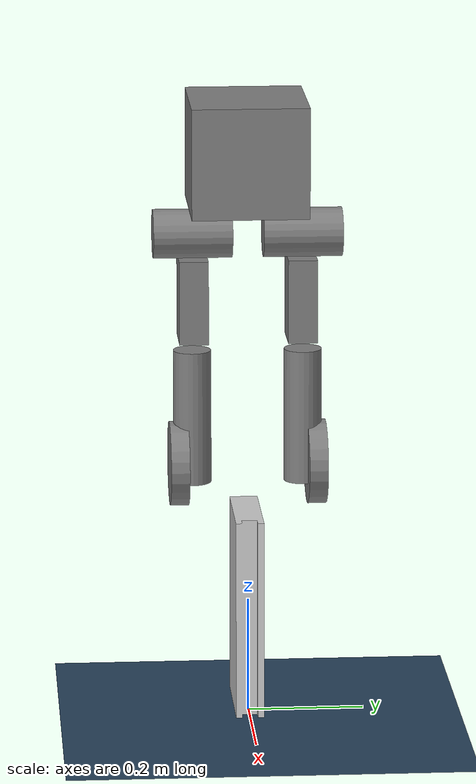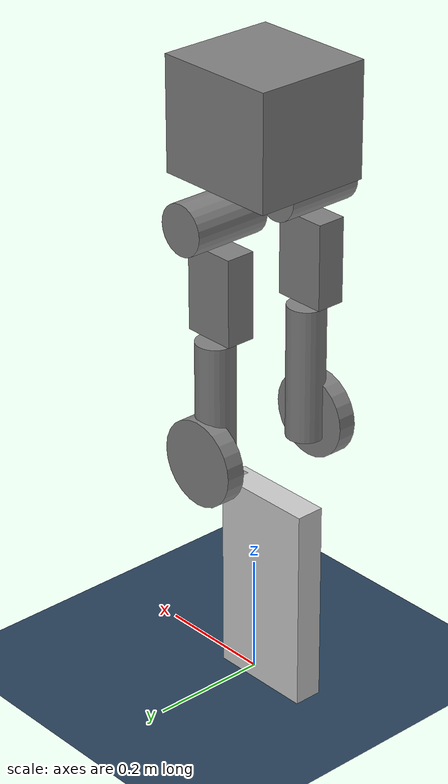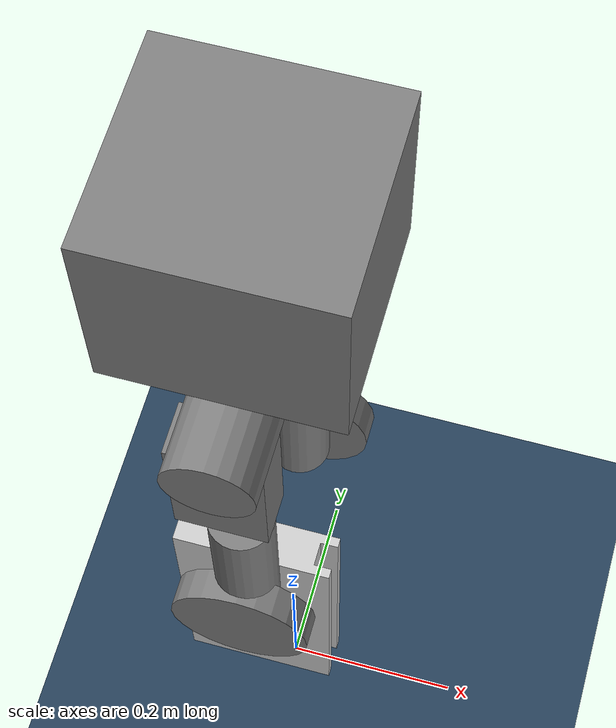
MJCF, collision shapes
<mujoco model="GOAT_on_Stand">
    <compiler angle="radian" coordinate="local" meshdir="../meshes/"/>
    <option timestep="0.005" gravity="0 0 -9.81"/>

    <!-- GOAT robot -->
    <include file="./goat_floating.xml"/>

    <!-- Stand jig -->
    <asset>
        <mesh name="jig_mesh" file="GOAT_stand7mm35cm.stl" scale="0.9 1 1"/>
        <material name="jig_material" rgba="0.8 0.8 0.8 1.0"/>
    </asset>

    <worldbody>
        <light pos="0 0 1.5" dir="0 0 -1" directional="true"/>

        <body name="jig_link" pos="-0.04 0 0">
            <inertial pos="0 0 0" mass="10.0" fullinertia="0.05 0.05 0.05 0.0 0.0 0.0"/>
            <geom name="jig_geom" type="mesh" mesh="jig_mesh" material="jig_material"
                  pos="0 0 0" euler="0 0 -1.570796"
                  contype="1" conaffinity="1"/>
        </body>
    </worldbody>
</mujoco>

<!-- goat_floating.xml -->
<mujoco model="GOAT_Floating">
    <compiler angle="radian" coordinate="local" meshdir="../meshes/" autolimits="true"/>

    <option timestep="0.005" gravity="0 0 -9.81" integrator="implicit" solver="Newton" iterations="32"/>

    <asset>
        <texture  name="groundplane" type="2d" builtin="checker" mark="edge" rgb1="0.2 0.3 0.4" rgb2="0.1 0.2 0.3" markrgb="0.8 0.8 0.8" width="512" height="512"/>
        <material name="groundplane" texture="groundplane" texuniform="true" texrepeat="5 5" reflectance="0.2"/>
    </asset>

    <worldbody>
        <light directional="true" diffuse=".8 .8 .8" specular=".2 .2 .2" pos="0 0 5" dir="0 0 -1"/>
        <geom name="floor" type="plane" size="0 0 1" material="groundplane"/>
    </worldbody>

    <asset>
        <mesh name="base_Link" file="base_Link_simple.stl"/>
        <mesh name="hip_L_Link" file="hip_L_Link.stl"/>
        <mesh name="hip_R_Link" file="hip_R_Link.stl"/>
        <mesh name="thigh_L_Link" file="thigh_L_Link.stl"/>
        <mesh name="thigh_R_Link" file="thigh_R_Link.stl"/>
        <mesh name="calf_L_Link" file="calf_L_Link.stl"/>
        <mesh name="calf_R_Link" file="calf_R_Link.stl"/>
        <mesh name="wheel_L_Link" file="wheel_L_Link.stl"/>
        <mesh name="wheel_R_Link" file="wheel_R_Link.stl"/>

        <material name="orange" rgba="1.0 0.423 0.039 1.0"/>
        <material name="black" rgba="0.792 0.819 0.933 1.0"/>
        <material name="white" rgba="1.0 1.0 1.0 1.0"/>
    </asset>

    <default>
        <geom contype="1" conaffinity="1" friction="0.6 0.1 0.1"/>
        <motor ctrllimited="true"/>
    </default>

    <worldbody>
        <body name="base_Link" pos="0 0 1.0">
            <!-- Floating base. Removing this drops nq 15 -> 8 and the 'home'
                 keyframe below stops matching; shrink its qpos too if you do. -->
            <freejoint name="root"/>
            <site name="imu_site" pos="0 0 0" size="0.01" type="sphere" rgba="1 0 0 1"/>

            <inertial pos="-0.009521 0.000016 -0.072346" mass="3.119" fullinertia="0.020284450 0.023476973 0.021206204 -0.000005647 0.006404633 0.000000541"/>
            <geom type="mesh" mesh="base_Link" material="black" pos="-0.1235 0 0.0155" contype="0" conaffinity="0" group="1"/>
            <geom type="box" size="0.107 0.100 0.095" pos="-0.02 0 -0.015" group="3"/>

            <body name="hip_L_Link" pos="0.038386 0.094233 -0.152597">
                <joint name="hip_L_Joint" type="hinge" axis="-1 0 0" range="-1.7453 1.0123" damping="0.06 0.0 0.0" frictionloss="0.05" armature="0.00202"/>
                <inertial pos="-0.048092 -0.038296 -0.000162" mass="0.316" fullinertia="0.000143701 0.000215732 0.000197705 -0.000012808 -0.000001530 -0.000000447"/>
                <geom type="mesh" mesh="hip_L_Link" material="black" contype="0" conaffinity="0" group="1"/>
                <geom type="cylinder" size="0.042 0.0675" pos="-0.0535 0 0" euler="1.57 0 0" group="3"/>

                <body name="thigh_L_Link" pos="-0.054 -0.017 0">
                    <joint name="thigh_L_Joint" type="hinge" axis="0 1 0" range="-0.3840 2.0071" damping="0.04 0.0 0.0" frictionloss="0.04" armature="0.00202"/>
                    <inertial pos="-0.002015 0.042352 -0.035272" mass="0.496" fullinertia="0.003893000 0.002945000 0.001254000 0.000020446085 -0.000110100 0.000343500"/>
                    <geom type="mesh" mesh="thigh_L_Link" material="white" contype="0" conaffinity="0" group="1"/>
                    <geom type="box" size="0.045 0.025 0.0725" pos="-0.011 0.016 -0.116" group="3"/>

                    <body name="calf_L_Link" pos="0 0.018 -0.205">
                        <joint name="knee_L_Joint" type="hinge" axis="0 -1 0" range="-0.523599 2.3387" damping="0.08 0.0 0.0" frictionloss="0.2" armature="0.00808"/>
                        <inertial pos="0.001969 0.000712 -0.160161" mass="0.326" fullinertia="0.009381000 0.009422000 0.000096695739 0.000000280420 0.000064503362 0.000041025966"/>
                        <geom type="mesh" mesh="calf_L_Link" material="black" contype="0" conaffinity="0" group="1"/>
                        <geom type="cylinder" size="0.0325 0.1165" pos="0 0 -0.116" group="3"/>

                        <body name="wheel_L_Link" pos="0 0.016555 -0.200">
                            <joint name="wheel_L_Joint" type="hinge" axis="0 1 0" damping="0.002 0.0 0.0" frictionloss="0.02" armature="0.0014"/>
                            <inertial pos="0.000000 0.007264 -0.000002" mass="0.239" fullinertia="0.000338788 0.000647488 0.000338791 -0.000000001 -0.000000008 0.000000001"/>
                            <geom type="mesh" mesh="wheel_L_Link" material="orange" contype="0" conaffinity="0" group="1"/>
                            <geom name="wheel_L_collision" type="cylinder" size="0.07275 0.016" pos="0 0.007 0" euler="1.5707 0 0" group="3"/>
                        </body>
                    </body>
                </body>
            </body>

            <body name="hip_R_Link" pos="0.038386 -0.094233 -0.152597">
                <joint name="hip_R_Joint" type="hinge" axis="-1 0 0" range="-1.0123 1.7453" damping="0.06 0.0 0.0" frictionloss="0.05" armature="0.00202"/>
                <inertial pos="-0.048092 0.038296 -0.000162" mass="0.322" fullinertia="0.000143701 0.000215732 0.000197705 0.000012808 -0.000001530 0.000000447"/>
                <geom type="mesh" mesh="hip_R_Link" material="black" contype="0" conaffinity="0" group="1"/>
                <geom type="cylinder" size="0.042 0.0675" pos="-0.0535 0 0" euler="1.57 0 0" group="3"/>

                <body name="thigh_R_Link" pos="-0.054 0.017 0">
                    <joint name="thigh_R_Joint" type="hinge" axis="0 -1 0" range="-2.0071 0.3840" damping="0.04 0.0 0.0" frictionloss="0.04" armature="0.00202"/>
                    <inertial pos="-0.002015 -0.042352 -0.035272" mass="0.495" fullinertia="0.003893000 0.002945000 0.001254000 -0.000020446085 -0.000110100 -0.000343500"/>
                    <geom type="mesh" mesh="thigh_R_Link" material="white" contype="0" conaffinity="0" group="1"/>
                    <geom type="box" size="0.045 0.025 0.0725" pos="-0.011 -0.016 -0.116" group="3"/>

                    <body name="calf_R_Link" pos="0 -0.018 -0.205">
                        <joint name="knee_R_Joint" type="hinge" axis="0 1 0" range="-2.3387 0.523599" damping="0.08 0.0 0.0" frictionloss="0.2" armature="0.00808"/>
                        <inertial pos="0.001969 -0.000712 -0.160161" mass="0.327" fullinertia="0.009381000 0.009422000 0.000096695739 -0.000000280420 0.000064503362 -0.000041025966"/>
                        <geom type="mesh" mesh="calf_R_Link" material="black" contype="0" conaffinity="0" group="1"/>
                        <geom type="cylinder" size="0.0325 0.1165" pos="0 0 -0.116" group="3"/>

                        <body name="wheel_R_Link" pos="0 -0.016555 -0.200">
                            <joint name="wheel_R_Joint" type="hinge" axis="0 -1 0" damping="0.002 0.0 0.0" frictionloss="0.02" armature="0.0014"/>
                            <inertial pos="0.000000 -0.007264 -0.000002" mass="0.217" fullinertia="0.000338788 0.000647488 0.000338791 0.000000001 -0.000000008 -0.000000001"/>
                            <geom type="mesh" mesh="wheel_R_Link" material="orange" contype="0" conaffinity="0" group="1"/>
                            <geom name="wheel_R_collision" type="cylinder" size="0.07275 0.016" pos="0 -0.007 0" euler="1.5707 0 0" group="3"/>
                        </body>
                    </body>
                </body>
            </body>
        </body>
    </worldbody>

    <contact>
        <exclude body1="base_Link"    body2="hip_L_Link"/>
        <exclude body1="base_Link"    body2="hip_R_Link"/>
        <exclude body1="base_Link"    body2="thigh_L_Link"/>
        <exclude body1="base_Link"    body2="thigh_R_Link"/>
        <exclude body1="base_Link"    body2="calf_L_Link"/>
        <exclude body1="base_Link"    body2="calf_R_Link"/>
        <exclude body1="base_Link"    body2="wheel_L_Link"/>
        <exclude body1="base_Link"    body2="wheel_R_Link"/>
        <exclude body1="hip_L_Link"   body2="hip_R_Link"/>
        <exclude body1="hip_L_Link"   body2="thigh_R_Link"/>
        <exclude body1="hip_L_Link"   body2="calf_L_Link"/>
        <exclude body1="hip_L_Link"   body2="calf_R_Link"/>
        <exclude body1="hip_L_Link"   body2="wheel_L_Link"/>
        <exclude body1="hip_L_Link"   body2="wheel_R_Link"/>
        <exclude body1="hip_R_Link"   body2="thigh_L_Link"/>
        <exclude body1="hip_R_Link"   body2="calf_L_Link"/>
        <exclude body1="hip_R_Link"   body2="calf_R_Link"/>
        <exclude body1="hip_R_Link"   body2="wheel_L_Link"/>
        <exclude body1="hip_R_Link"   body2="wheel_R_Link"/>
        <exclude body1="thigh_L_Link" body2="thigh_R_Link"/>
        <exclude body1="thigh_L_Link" body2="calf_R_Link"/>
        <exclude body1="thigh_L_Link" body2="wheel_L_Link"/>
        <exclude body1="thigh_L_Link" body2="wheel_R_Link"/>
        <exclude body1="thigh_R_Link" body2="calf_L_Link"/>
        <exclude body1="thigh_R_Link" body2="wheel_L_Link"/>
        <exclude body1="thigh_R_Link" body2="wheel_R_Link"/>
        <exclude body1="calf_L_Link"  body2="calf_R_Link"/>
        <exclude body1="calf_L_Link"  body2="wheel_R_Link"/>
        <exclude body1="calf_R_Link"  body2="wheel_L_Link"/>
        <exclude body1="wheel_L_Link" body2="wheel_R_Link"/>
    </contact>

    <!-- Torque actuators: ctrl is a joint torque [Nm]. Joint-level PD lives in
         the controller, matching the real robot's torque-setpoint driver. -->
    <actuator>
        <motor name="hip_L_Joint"   joint="hip_L_Joint"      ctrllimited="true" ctrlrange="-4.5 4.5"    forcelimited="true" forcerange="-4.5 4.5"/>
        <motor name="thigh_L_Joint" joint="thigh_L_Joint"    ctrllimited="true" ctrlrange="-4.5 4.5"    forcelimited="true" forcerange="-4.5 4.5"/>
        <motor name="knee_L_Joint"  joint="knee_L_Joint"     ctrllimited="true" ctrlrange="-9.0 9.0"    forcelimited="true" forcerange="-9.0 9.0"/>
        <motor name="wheel_L_Joint" joint="wheel_L_Joint"    ctrllimited="true" ctrlrange="-2.5 2.5"    forcelimited="true" forcerange="-2.5 2.5"/>
        <motor name="hip_R_Joint"   joint="hip_R_Joint"      ctrllimited="true" ctrlrange="-4.5 4.5"    forcelimited="true" forcerange="-4.5 4.5"/>
        <motor name="thigh_R_Joint" joint="thigh_R_Joint"    ctrllimited="true" ctrlrange="-4.5 4.5"    forcelimited="true" forcerange="-4.5 4.5"/>
        <motor name="knee_R_Joint"  joint="knee_R_Joint"     ctrllimited="true" ctrlrange="-9.0 9.0"    forcelimited="true" forcerange="-9.0 9.0"/>
        <motor name="wheel_R_Joint" joint="wheel_R_Joint"    ctrllimited="true" ctrlrange="-2.5 2.5"    forcelimited="true" forcerange="-2.5 2.5"/>
    </actuator>

    <sensor>
        <framequat name="imu_quat" objtype="site" objname="imu_site"/>
        <accelerometer name="imu_acc" site="imu_site"/>
        <gyro name="imu_gyro" site="imu_site"/>
        <magnetometer name="imu_mag" site="imu_site"/>
    </sensor>

    <keyframe>
        <key name="home"
             qpos="0 0 0.465   1 0 0 0   0 0.9943 1.884 0   0 -0.9943 -1.884 0"
             qvel="0 0 0       0 0 0     0 0 0 0           0 0 0 0"
             ctrl="0 0 0 0     0 0 0 0"/>
    </keyframe>

</mujoco>
